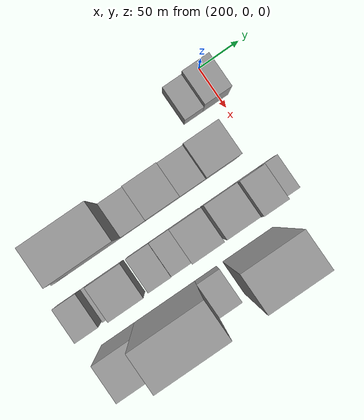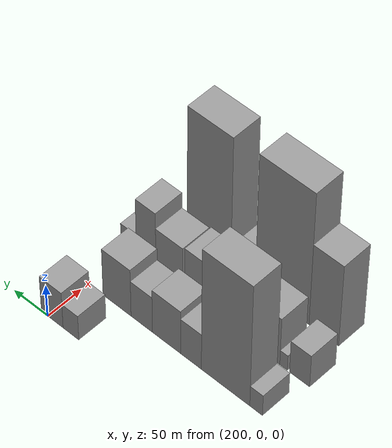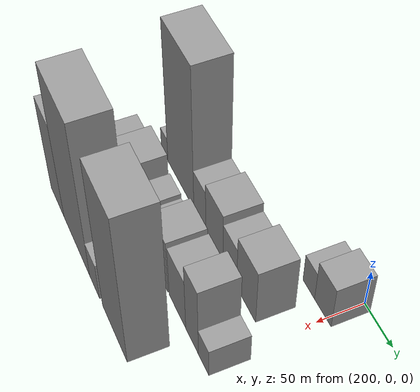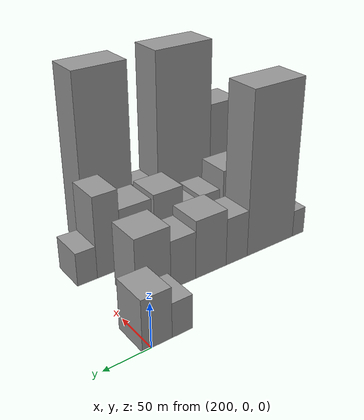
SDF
<sdf version="1.6">
 <world name="default">
  <model name="building_135">
   <static>1</static>
   <pose>220.0000 -34.4745 0 0.000000 0.000000 0.000000</pose>
   <link name="link">
    <pose>0 0 19.50 0 0 0</pose>
    <collision name="collision"><geometry><box><size>40.0000 23.2288 39.0000</size></box></geometry></collision>
    <visual name="visual">
     <cast_shadows>0</cast_shadows>
     <geometry><box><size>40.0000 23.2288 39.0000</size></box></geometry>
     <material>
      <script>
       <uri>model://grey_wall/materials/scripts</uri>
       <uri>model://grey_wall/materials/textures</uri>
       <name>vrc/grey_wall</name>
      </script>
     </material>
    </visual>
   </link>
  </model>
  <model name="building_136">
   <static>1</static>
   <pose>220.0000 -6.7000 0 0.000000 0.000000 0.000000</pose>
   <link name="link">
    <pose>0 0 28.50 0 0 0</pose>
    <collision name="collision"><geometry><box><size>40.0000 32.3200 57.0000</size></box></geometry></collision>
    <visual name="visual">
     <cast_shadows>0</cast_shadows>
     <geometry><box><size>40.0000 32.3200 57.0000</size></box></geometry>
     <material>
      <script>
       <uri>model://grey_wall/materials/scripts</uri>
       <uri>model://grey_wall/materials/textures</uri>
       <name>vrc/grey_wall</name>
      </script>
     </material>
    </visual>
   </link>
  </model>
  <model name="building_181">
   <static>1</static>
   <pose>280.0000 -240.8980 0 0.000000 0.000000 0.000000</pose>
   <link name="link">
    <pose>0 0 16.50 0 0 0</pose>
    <collision name="collision"><geometry><box><size>40.0000 17.5299 33.0000</size></box></geometry></collision>
    <visual name="visual">
     <cast_shadows>0</cast_shadows>
     <geometry><box><size>40.0000 17.5299 33.0000</size></box></geometry>
     <material>
      <script>
       <uri>model://grey_wall/materials/scripts</uri>
       <uri>model://grey_wall/materials/textures</uri>
       <name>vrc/grey_wall</name>
      </script>
     </material>
    </visual>
   </link>
  </model>
  <model name="building_182">
   <static>1</static>
   <pose>280.0000 -198.2186 0 0.000000 0.000000 0.000000</pose>
   <link name="link">
    <pose>0 0 96.00 0 0 0</pose>
    <collision name="collision"><geometry><box><size>40.0000 67.8288 192.0000</size></box></geometry></collision>
    <visual name="visual">
     <cast_shadows>0</cast_shadows>
     <geometry><box><size>40.0000 67.8288 192.0000</size></box></geometry>
     <material>
      <script>
       <uri>model://grey_wall/materials/scripts</uri>
       <uri>model://grey_wall/materials/textures</uri>
       <name>vrc/grey_wall</name>
      </script>
     </material>
    </visual>
   </link>
  </model>
  <model name="building_183">
   <static>1</static>
   <pose>280.0000 -149.5653 0 0.000000 0.000000 0.000000</pose>
   <link name="link">
    <pose>0 0 28.50 0 0 0</pose>
    <collision name="collision"><geometry><box><size>40.0000 29.4779 57.0000</size></box></geometry></collision>
    <visual name="visual">
     <cast_shadows>0</cast_shadows>
     <geometry><box><size>40.0000 29.4779 57.0000</size></box></geometry>
     <material>
      <script>
       <uri>model://grey_wall/materials/scripts</uri>
       <uri>model://grey_wall/materials/textures</uri>
       <name>vrc/grey_wall</name>
      </script>
     </material>
    </visual>
   </link>
  </model>
  <model name="building_184">
   <static>1</static>
   <pose>280.0000 -114.5955 0 0.000000 0.000000 0.000000</pose>
   <link name="link">
    <pose>0 0 34.50 0 0 0</pose>
    <collision name="collision"><geometry><box><size>40.0000 40.4616 69.0000</size></box></geometry></collision>
    <visual name="visual">
     <cast_shadows>0</cast_shadows>
     <geometry><box><size>40.0000 40.4616 69.0000</size></box></geometry>
     <material>
      <script>
       <uri>model://grey_wall/materials/scripts</uri>
       <uri>model://grey_wall/materials/textures</uri>
       <name>vrc/grey_wall</name>
      </script>
     </material>
    </visual>
   </link>
  </model>
  <model name="building_185">
   <static>1</static>
   <pose>280.0000 -78.7830 0 0.000000 0.000000 0.000000</pose>
   <link name="link">
    <pose>0 0 28.50 0 0 0</pose>
    <collision name="collision"><geometry><box><size>40.0000 31.1634 57.0000</size></box></geometry></collision>
    <visual name="visual">
     <cast_shadows>0</cast_shadows>
     <geometry><box><size>40.0000 31.1634 57.0000</size></box></geometry>
     <material>
      <script>
       <uri>model://grey_wall/materials/scripts</uri>
       <uri>model://grey_wall/materials/textures</uri>
       <name>vrc/grey_wall</name>
      </script>
     </material>
    </visual>
   </link>
  </model>
  <model name="building_186">
   <static>1</static>
   <pose>280.0000 -42.5746 0 0.000000 0.000000 0.000000</pose>
   <link name="link">
    <pose>0 0 37.50 0 0 0</pose>
    <collision name="collision"><geometry><box><size>40.0000 41.2534 75.0000</size></box></geometry></collision>
    <visual name="visual">
     <cast_shadows>0</cast_shadows>
     <geometry><box><size>40.0000 41.2534 75.0000</size></box></geometry>
     <material>
      <script>
       <uri>model://grey_wall/materials/scripts</uri>
       <uri>model://grey_wall/materials/textures</uri>
       <name>vrc/grey_wall</name>
      </script>
     </material>
    </visual>
   </link>
  </model>
  <model name="building_241">
   <static>1</static>
   <pose>340.0000 -246.1269 0 0.000000 0.000000 0.000000</pose>
   <link name="link">
    <pose>0 0 25.50 0 0 0</pose>
    <collision name="collision"><geometry><box><size>40.0000 27.7786 51.0000</size></box></geometry></collision>
    <visual name="visual">
     <cast_shadows>0</cast_shadows>
     <geometry><box><size>40.0000 27.7786 51.0000</size></box></geometry>
     <material>
      <script>
       <uri>model://grey_wall/materials/scripts</uri>
       <uri>model://grey_wall/materials/textures</uri>
       <name>vrc/grey_wall</name>
      </script>
     </material>
    </visual>
   </link>
  </model>
  <model name="building_242">
   <static>1</static>
   <pose>340.0000 -223.9950 0 0.000000 0.000000 0.000000</pose>
   <link name="link">
    <pose>0 0 12.00 0 0 0</pose>
    <collision name="collision"><geometry><box><size>40.0000 10.4852 24.0000</size></box></geometry></collision>
    <visual name="visual">
     <cast_shadows>0</cast_shadows>
     <geometry><box><size>40.0000 10.4852 24.0000</size></box></geometry>
     <material>
      <script>
       <uri>model://grey_wall/materials/scripts</uri>
       <uri>model://grey_wall/materials/textures</uri>
       <name>vrc/grey_wall</name>
      </script>
     </material>
    </visual>
   </link>
  </model>
  <model name="building_243">
   <static>1</static>
   <pose>340.0000 -198.2505 0 0.000000 0.000000 0.000000</pose>
   <link name="link">
    <pose>0 0 37.50 0 0 0</pose>
    <collision name="collision"><geometry><box><size>40.0000 41.0039 75.0000</size></box></geometry></collision>
    <visual name="visual">
     <cast_shadows>0</cast_shadows>
     <geometry><box><size>40.0000 41.0039 75.0000</size></box></geometry>
     <material>
      <script>
       <uri>model://grey_wall/materials/scripts</uri>
       <uri>model://grey_wall/materials/textures</uri>
       <name>vrc/grey_wall</name>
      </script>
     </material>
    </visual>
   </link>
  </model>
  <model name="building_244">
   <static>1</static>
   <pose>340.0000 -159.0229 0 0.000000 0.000000 0.000000</pose>
   <link name="link">
    <pose>0 0 27.00 0 0 0</pose>
    <collision name="collision"><geometry><box><size>40.0000 27.4513 54.0000</size></box></geometry></collision>
    <visual name="visual">
     <cast_shadows>0</cast_shadows>
     <geometry><box><size>40.0000 27.4513 54.0000</size></box></geometry>
     <material>
      <script>
       <uri>model://grey_wall/materials/scripts</uri>
       <uri>model://grey_wall/materials/textures</uri>
       <name>vrc/grey_wall</name>
      </script>
     </material>
    </visual>
   </link>
  </model>
  <model name="building_245">
   <static>1</static>
   <pose>340.0000 -133.2510 0 0.000000 0.000000 0.000000</pose>
   <link name="link">
    <pose>0 0 24.00 0 0 0</pose>
    <collision name="collision"><geometry><box><size>40.0000 24.0925 48.0000</size></box></geometry></collision>
    <visual name="visual">
     <cast_shadows>0</cast_shadows>
     <geometry><box><size>40.0000 24.0925 48.0000</size></box></geometry>
     <material>
      <script>
       <uri>model://grey_wall/materials/scripts</uri>
       <uri>model://grey_wall/materials/textures</uri>
       <name>vrc/grey_wall</name>
      </script>
     </material>
    </visual>
   </link>
  </model>
  <model name="building_246">
   <static>1</static>
   <pose>340.0000 -102.4374 0 0.000000 0.000000 0.000000</pose>
   <link name="link">
    <pose>0 0 37.50 0 0 0</pose>
    <collision name="collision"><geometry><box><size>40.0000 37.5347 75.0000</size></box></geometry></collision>
    <visual name="visual">
     <cast_shadows>0</cast_shadows>
     <geometry><box><size>40.0000 37.5347 75.0000</size></box></geometry>
     <material>
      <script>
       <uri>model://grey_wall/materials/scripts</uri>
       <uri>model://grey_wall/materials/textures</uri>
       <name>vrc/grey_wall</name>
      </script>
     </material>
    </visual>
   </link>
  </model>
  <model name="building_247">
   <static>1</static>
   <pose>340.0000 -61.0092 0 0.000000 0.000000 0.000000</pose>
   <link name="link">
    <pose>0 0 36.00 0 0 0</pose>
    <collision name="collision"><geometry><box><size>40.0000 39.3217 72.0000</size></box></geometry></collision>
    <visual name="visual">
     <cast_shadows>0</cast_shadows>
     <geometry><box><size>40.0000 39.3217 72.0000</size></box></geometry>
     <material>
      <script>
       <uri>model://grey_wall/materials/scripts</uri>
       <uri>model://grey_wall/materials/textures</uri>
       <name>vrc/grey_wall</name>
      </script>
     </material>
    </visual>
   </link>
  </model>
  <model name="building_248">
   <static>1</static>
   <pose>340.0000 -26.8840 0 0.000000 0.000000 0.000000</pose>
   <link name="link">
    <pose>0 0 48.00 0 0 0</pose>
    <collision name="collision"><geometry><box><size>40.0000 28.9287 96.0000</size></box></geometry></collision>
    <visual name="visual">
     <cast_shadows>0</cast_shadows>
     <geometry><box><size>40.0000 28.9287 96.0000</size></box></geometry>
     <material>
      <script>
       <uri>model://grey_wall/materials/scripts</uri>
       <uri>model://grey_wall/materials/textures</uri>
       <name>vrc/grey_wall</name>
      </script>
     </material>
    </visual>
   </link>
  </model>
  <model name="building_249">
   <static>1</static>
   <pose>340.0000 -0.9555 0 0.000000 0.000000 0.000000</pose>
   <link name="link">
    <pose>0 0 19.50 0 0 0</pose>
    <collision name="collision"><geometry><box><size>40.0000 22.9282 39.0000</size></box></geometry></collision>
    <visual name="visual">
     <cast_shadows>0</cast_shadows>
     <geometry><box><size>40.0000 22.9282 39.0000</size></box></geometry>
     <material>
      <script>
       <uri>model://grey_wall/materials/scripts</uri>
       <uri>model://grey_wall/materials/textures</uri>
       <name>vrc/grey_wall</name>
      </script>
     </material>
    </visual>
   </link>
  </model>
  <model name="building_297">
   <static>1</static>
   <pose>400.0000 -225.8382 0 0.000000 0.000000 0.000000</pose>
   <link name="link">
    <pose>0 0 64.50 0 0 0</pose>
    <collision name="collision"><geometry><box><size>40.0000 41.2554 129.0000</size></box></geometry></collision>
    <visual name="visual">
     <cast_shadows>0</cast_shadows>
     <geometry><box><size>40.0000 41.2554 129.0000</size></box></geometry>
     <material>
      <script>
       <uri>model://grey_wall/materials/scripts</uri>
       <uri>model://grey_wall/materials/textures</uri>
       <name>vrc/grey_wall</name>
      </script>
     </material>
    </visual>
   </link>
  </model>
  <model name="building_298">
   <static>1</static>
   <pose>400.0000 -167.2326 0 0.000000 0.000000 0.000000</pose>
   <link name="link">
    <pose>0 0 103.50 0 0 0</pose>
    <collision name="collision"><geometry><box><size>40.0000 75.9558 207.0000</size></box></geometry></collision>
    <visual name="visual">
     <cast_shadows>0</cast_shadows>
     <geometry><box><size>40.0000 75.9558 207.0000</size></box></geometry>
     <material>
      <script>
       <uri>model://grey_wall/materials/scripts</uri>
       <uri>model://grey_wall/materials/textures</uri>
       <name>vrc/grey_wall</name>
      </script>
     </material>
    </visual>
   </link>
  </model>
  <model name="building_299">
   <static>1</static>
   <pose>400.0000 -115.6332 0 0.000000 0.000000 0.000000</pose>
   <link name="link">
    <pose>0 0 25.50 0 0 0</pose>
    <collision name="collision"><geometry><box><size>40.0000 27.2431 51.0000</size></box></geometry></collision>
    <visual name="visual">
     <cast_shadows>0</cast_shadows>
     <geometry><box><size>40.0000 27.2431 51.0000</size></box></geometry>
     <material>
      <script>
       <uri>model://grey_wall/materials/scripts</uri>
       <uri>model://grey_wall/materials/textures</uri>
       <name>vrc/grey_wall</name>
      </script>
     </material>
    </visual>
   </link>
  </model>
  <model name="building_300">
   <static>1</static>
   <pose>400.0000 -62.0757 0 0.000000 0.000000 0.000000</pose>
   <link name="link">
    <pose>0 0 102.00 0 0 0</pose>
    <collision name="collision"><geometry><box><size>40.0000 63.8719 204.0000</size></box></geometry></collision>
    <visual name="visual">
     <cast_shadows>0</cast_shadows>
     <geometry><box><size>40.0000 63.8719 204.0000</size></box></geometry>
     <material>
      <script>
       <uri>model://grey_wall/materials/scripts</uri>
       <uri>model://grey_wall/materials/textures</uri>
       <name>vrc/grey_wall</name>
      </script>
     </material>
    </visual>
   </link>
  </model>
 </world>
</sdf>
